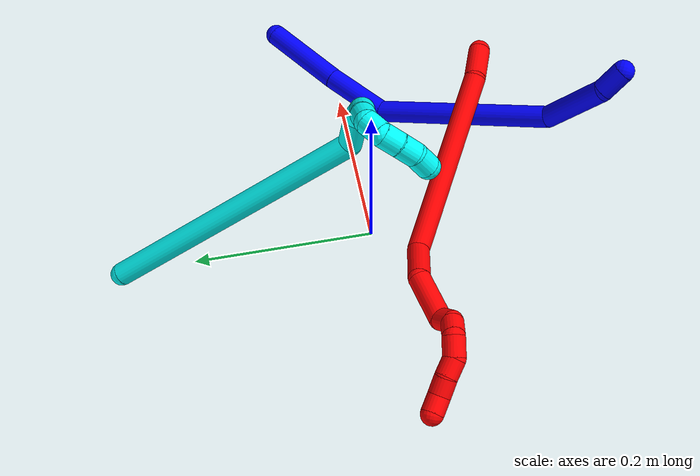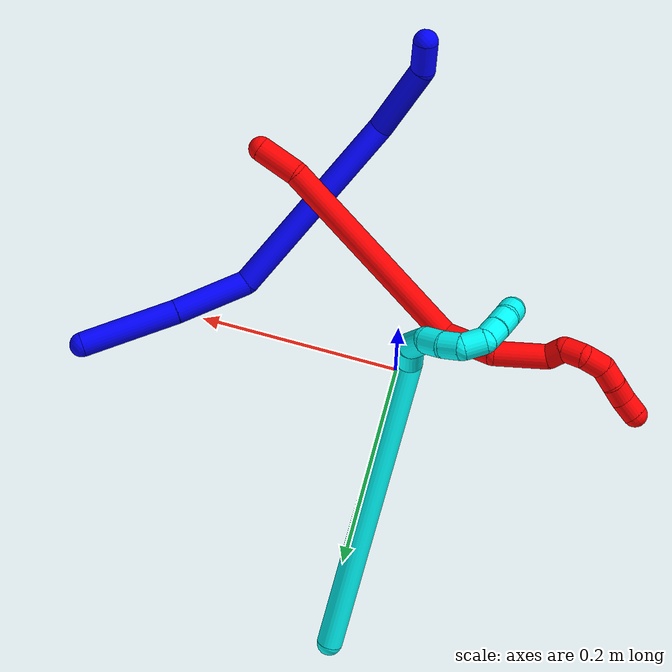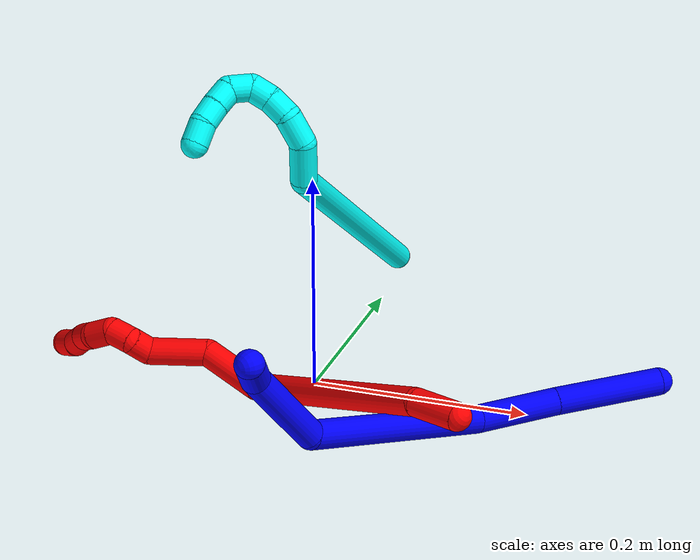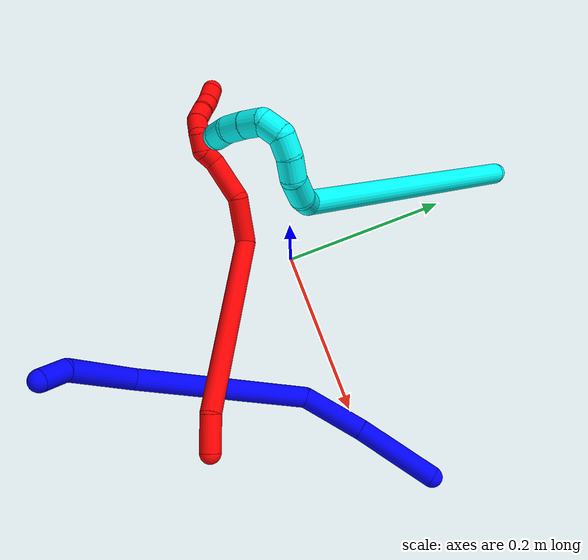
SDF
<sdf version="1.7">
 <world name="default">
  <plugin name="TubeGeneratorPlugin" filename="libtube_generator_plugin.so"/>
  <model name="photoneo_s_sensor">
   <static>1</static>
   <pose>0 0 2 1.57079 1.57079 3.14159</pose>
   <link name="link">
    <inertial><mass>0.1</mass></inertial>
    <sensor name="sensor" type="depth">
     <update_rate>30</update_rate>
     <camera>
      <horizontal_fov>1.22</horizontal_fov>
      <image><width>1920</width><height>1200</height><format>B8G8R8</format></image>
      <clip><near>0.1</near><far>4</far></clip>
      <depth_camera><output>points</output></depth_camera>
     </camera>
     <plugin name="camera_plugin" filename="libgazebo_ros_depth_camera.so">
      <baseline>0.2</baseline>
      <alwaysOn>1</alwaysOn>
      <updateRate>0.0</updateRate>
      <cameraName>camera_ir</cameraName>
      <imageTopicName>/camera/color/image_raw</imageTopicName>
      <cameraInfoTopicName>/camera/color/camera_info</cameraInfoTopicName>
      <depthImageTopicName>/camera/depth/image_raw</depthImageTopicName>
      <depthImageCameraInfoTopicName>/camera/depth/camera_info</depthImageCameraInfoTopicName>
      <pointCloudTopicName>/camera/depth/points</pointCloudTopicName>
      <frameName>fr_optical</frameName>
      <pointCloudCutoff>0.1</pointCloudCutoff>
      <pointCloudCutoffMax>2.0</pointCloudCutoffMax>
      <distortionK1>0</distortionK1>
      <distortionK2>0</distortionK2>
      <distortionK3>0</distortionK3>
      <distortionT1>0</distortionT1>
      <distortionT2>0</distortionT2>
      <CxPrime>0</CxPrime>
      <Cx>0</Cx>
      <Cy>0</Cy>
      <focalLength>0</focalLength>
      <hackBaseline>0</hackBaseline>
     </plugin>
    </sensor>
   </link>
  </model>
  <gravity>0 0 -9.8</gravity>
  <magnetic_field>6e-06 2.3e-05 -4.2e-05</magnetic_field>
  <atmosphere type="adiabatic"/>
  <physics name="default_physics" default="0" type="ode">
   <max_step_size>0.003</max_step_size>
   <real_time_factor>1</real_time_factor>
   <real_time_update_rate>1000</real_time_update_rate>
   <max_contacts>10000</max_contacts>
   <ode>
    <solver>
     <type>quick</type>
     <iters>100</iters>
     <sor>1.3</sor>
     <use_dynamic_moi_rescaling>0</use_dynamic_moi_rescaling>
    </solver>
    <constraints>
     <contact_max_correcting_vel>0</contact_max_correcting_vel>
     <contact_surface_layer>0.001</contact_surface_layer>
     <cfm>0</cfm>
     <erp>0.2</erp>
    </constraints>
   </ode>
  </physics>
  <scene><ambient>0.4 0.4 0.4 1</ambient><background>0.7 0.7 0.7 1</background><shadows>0</shadows></scene>
  <audio><device>default</device></audio>
  <spherical_coordinates>
   <surface_model>EARTH_WGS84</surface_model>
   <latitude_deg>0</latitude_deg>
   <longitude_deg>0</longitude_deg>
   <elevation>0</elevation>
   <heading_deg>0</heading_deg>
  </spherical_coordinates>
  <model name="bin">
   <static>1</static>
   <link name="bottom">
    <collision name="collision-bottom">
     <pose>0 0 -0.01 0 -0 0</pose>
     <geometry><box><size>0.8 0.6 0.02</size></box></geometry>
     <surface>
      <friction><ode><mu>100</mu><mu2>100</mu2></ode></friction>
      <contact><collide_bitmask>65535</collide_bitmask></contact>
     </surface>
    </collision>
   </link>
   <link name="west_wall">
    <collision name="collision-west_wall">
     <pose>-0.41 0 0.1 0 -0 0</pose>
     <geometry><box><size>0.02 0.6 0.2</size></box></geometry>
     <surface>
      <friction><ode><mu>100</mu><mu2>100</mu2></ode></friction>
      <contact><collide_bitmask>65535</collide_bitmask></contact>
     </surface>
    </collision>
   </link>
   <link name="east_wall">
    <collision name="collision-east_wall">
     <pose>0.41 0 0.1 0 -0 0</pose>
     <geometry><box><size>0.02 0.6 0.2</size></box></geometry>
     <surface>
      <friction><ode><mu>100</mu><mu2>100</mu2></ode></friction>
      <contact><collide_bitmask>65535</collide_bitmask></contact>
     </surface>
    </collision>
   </link>
   <link name="south_wall">
    <collision name="collision-south_wall">
     <pose>0 -0.31 0.1 0 -0 0</pose>
     <geometry><box><size>0.8 0.02 0.2</size></box></geometry>
     <surface>
      <friction><ode><mu>100</mu><mu2>100</mu2></ode></friction>
      <contact><collide_bitmask>65535</collide_bitmask></contact>
     </surface>
    </collision>
   </link>
   <link name="north_wall">
    <collision name="collision-north_wall">
     <pose>0 0.31 0.1 0 -0 0</pose>
     <geometry><box><size>0.8 0.02 0.2</size></box></geometry>
     <surface>
      <friction><ode><mu>100</mu><mu2>100</mu2></ode></friction>
      <contact><collide_bitmask>65535</collide_bitmask></contact>
     </surface>
    </collision>
   </link>
  </model>
  <model name="1">
   <static>0</static>
   <link name="1">
    <collision name="collision-cylinder-e_1_1_4">
     <pose>0.013025 -0.015727 0.045248 0.334516 0.26548 0.04508</pose>
     <geometry><cylinder><radius>0.0125</radius><length>0.099284</length></cylinder></geometry>
     <surface>
      <friction><ode><mu>1.16</mu><mu2>1.16</mu2><slip1>0</slip1><slip2>0</slip2></ode></friction>
      <contact><ode><kp>1e+06</kp><kd>1</kd><max_vel>0</max_vel><min_depth>0.001</min_depth></ode></contact>
     </surface>
    </collision>
    <visual name="visual-cylinder-e_1_1_4">
     <pose>0.013025 -0.015727 0.045248 0.334516 0.26548 0.04508</pose>
     <geometry><cylinder><radius>0.0125</radius><length>0.099284</length></cylinder></geometry>
     <material><ambient>0 0 1 1</ambient></material>
    </visual>
    <collision name="collision-cylinder-e_2_4_5">
     <pose>0.034844 -0.041815 0.126271 0.281904 0.231882 0.033048</pose>
     <geometry><cylinder><radius>0.0125</radius><length>0.07654</length></cylinder></geometry>
     <surface>
      <friction><ode><mu>1.16</mu><mu2>1.16</mu2><slip1>0</slip1><slip2>0</slip2></ode></friction>
      <contact><ode><kp>1e+06</kp><kd>1</kd><max_vel>0</max_vel><min_depth>0.001</min_depth></ode></contact>
     </surface>
    </collision>
    <visual name="visual-cylinder-e_2_4_5">
     <pose>0.034844 -0.041815 0.126271 0.281904 0.231882 0.033048</pose>
     <geometry><cylinder><radius>0.0125</radius><length>0.07654</length></cylinder></geometry>
     <material><ambient>0 0 1 1</ambient></material>
    </visual>
    <collision name="collision-cylinder-e_3_5_6">
     <pose>0.016828 -0.064896 0.260455 0.128539 -0.263893 -0.017083</pose>
     <geometry><cylinder><radius>0.0125</radius><length>0.205571</length></cylinder></geometry>
     <surface>
      <friction><ode><mu>1.16</mu><mu2>1.16</mu2><slip1>0</slip1><slip2>0</slip2></ode></friction>
      <contact><ode><kp>1e+06</kp><kd>1</kd><max_vel>0</max_vel><min_depth>0.001</min_depth></ode></contact>
     </surface>
    </collision>
    <visual name="visual-cylinder-e_3_5_6">
     <pose>0.016828 -0.064896 0.260455 0.128539 -0.263893 -0.017083</pose>
     <geometry><cylinder><radius>0.0125</radius><length>0.205571</length></cylinder></geometry>
     <material><ambient>0 0 1 1</ambient></material>
    </visual>
    <collision name="collision-cylinder-e_4_6_7">
     <pose>-0.037898 -0.097247 0.385901 0.628014 -0.696005 -0.234537</pose>
     <geometry><cylinder><radius>0.0125</radius><length>0.087079</length></cylinder></geometry>
     <surface>
      <friction><ode><mu>1.16</mu><mu2>1.16</mu2><slip1>0</slip1><slip2>0</slip2></ode></friction>
      <contact><ode><kp>1e+06</kp><kd>1</kd><max_vel>0</max_vel><min_depth>0.001</min_depth></ode></contact>
     </surface>
    </collision>
    <visual name="visual-cylinder-e_4_6_7">
     <pose>-0.037898 -0.097247 0.385901 0.628014 -0.696005 -0.234537</pose>
     <geometry><cylinder><radius>0.0125</radius><length>0.087079</length></cylinder></geometry>
     <material><ambient>0 0 1 1</ambient></material>
    </visual>
    <collision name="collision-cylinder-e_5_7_2">
     <pose>-0.079314 -0.117874 0.421014 0.122649 -1.0284 -0.069342</pose>
     <geometry><cylinder><radius>0.0125</radius><length>0.031525</length></cylinder></geometry>
     <surface>
      <friction><ode><mu>1.16</mu><mu2>1.16</mu2><slip1>0</slip1><slip2>0</slip2></ode></friction>
      <contact><ode><kp>1e+06</kp><kd>1</kd><max_vel>0</max_vel><min_depth>0.001</min_depth></ode></contact>
     </surface>
    </collision>
    <visual name="visual-cylinder-e_5_7_2">
     <pose>-0.079314 -0.117874 0.421014 0.122649 -1.0284 -0.069342</pose>
     <geometry><cylinder><radius>0.0125</radius><length>0.031525</length></cylinder></geometry>
     <material><ambient>0 0 1 1</ambient></material>
    </visual>
    <collision name="collision-sphere-2">
     <pose>-0.092815 -0.118869 0.42909 0 -0 0</pose>
     <geometry><sphere><radius>0.0125</radius></sphere></geometry>
     <surface>
      <friction><ode><mu>1.16</mu><mu2>1.16</mu2><slip1>0</slip1><slip2>0</slip2></ode></friction>
      <contact><ode><kp>1e+06</kp><kd>1</kd><max_vel>0</max_vel><min_depth>0.001</min_depth></ode></contact>
     </surface>
    </collision>
    <visual name="visual-sphere-2">
     <pose>-0.092815 -0.118869 0.42909 0 -0 0</pose>
     <geometry><sphere><radius>0.0125</radius></sphere></geometry>
     <material><ambient>0 0 1 1</ambient></material>
    </visual>
    <collision name="collision-sphere-7">
     <pose>-0.065814 -0.116878 0.412939 0 -0 0</pose>
     <geometry><sphere><radius>0.0125</radius></sphere></geometry>
     <surface>
      <friction><ode><mu>1.16</mu><mu2>1.16</mu2><slip1>0</slip1><slip2>0</slip2></ode></friction>
      <contact><ode><kp>1e+06</kp><kd>1</kd><max_vel>0</max_vel><min_depth>0.001</min_depth></ode></contact>
     </surface>
    </collision>
    <visual name="visual-sphere-7">
     <pose>-0.065814 -0.116878 0.412939 0 -0 0</pose>
     <geometry><sphere><radius>0.0125</radius></sphere></geometry>
     <material><ambient>0 0 1 1</ambient></material>
    </visual>
    <collision name="collision-sphere-6">
     <pose>-0.009982 -0.077616 0.358864 0 -0 0</pose>
     <geometry><sphere><radius>0.0125</radius></sphere></geometry>
     <surface>
      <friction><ode><mu>1.16</mu><mu2>1.16</mu2><slip1>0</slip1><slip2>0</slip2></ode></friction>
      <contact><ode><kp>1e+06</kp><kd>1</kd><max_vel>0</max_vel><min_depth>0.001</min_depth></ode></contact>
     </surface>
    </collision>
    <visual name="visual-sphere-6">
     <pose>-0.009982 -0.077616 0.358864 0 -0 0</pose>
     <geometry><sphere><radius>0.0125</radius></sphere></geometry>
     <material><ambient>0 0 1 1</ambient></material>
    </visual>
    <collision name="collision-sphere-5">
     <pose>0.043639 -0.052177 0.162046 0 -0 0</pose>
     <geometry><sphere><radius>0.0125</radius></sphere></geometry>
     <surface>
      <friction><ode><mu>1.16</mu><mu2>1.16</mu2><slip1>0</slip1><slip2>0</slip2></ode></friction>
      <contact><ode><kp>1e+06</kp><kd>1</kd><max_vel>0</max_vel><min_depth>0.001</min_depth></ode></contact>
     </surface>
    </collision>
    <visual name="visual-sphere-5">
     <pose>0.043639 -0.052177 0.162046 0 -0 0</pose>
     <geometry><sphere><radius>0.0125</radius></sphere></geometry>
     <material><ambient>0 0 1 1</ambient></material>
    </visual>
    <collision name="collision-sphere-1">
     <geometry><sphere><radius>0.0125</radius></sphere></geometry>
     <surface>
      <friction><ode><mu>1.16</mu><mu2>1.16</mu2><slip1>0</slip1><slip2>0</slip2></ode></friction>
      <contact><ode><kp>1e+06</kp><kd>1</kd><max_vel>0</max_vel><min_depth>0.001</min_depth></ode></contact>
     </surface>
    </collision>
    <visual name="visual-sphere-1">
     <geometry><sphere><radius>0.0125</radius></sphere></geometry>
     <material><ambient>0 0 1 1</ambient></material>
    </visual>
    <collision name="collision-sphere-4">
     <pose>0.026049 -0.031454 0.090495 0 -0 0</pose>
     <geometry><sphere><radius>0.0125</radius></sphere></geometry>
     <surface>
      <friction><ode><mu>1.16</mu><mu2>1.16</mu2><slip1>0</slip1><slip2>0</slip2></ode></friction>
      <contact><ode><kp>1e+06</kp><kd>1</kd><max_vel>0</max_vel><min_depth>0.001</min_depth></ode></contact>
     </surface>
    </collision>
    <visual name="visual-sphere-4">
     <pose>0.026049 -0.031454 0.090495 0 -0 0</pose>
     <geometry><sphere><radius>0.0125</radius></sphere></geometry>
     <material><ambient>0 0 1 1</ambient></material>
    </visual>
    <inertial>
     <pose>0.003238 -0.060574 0.229152 0 -0 0</pose>
     <mass>0.5</mass>
     <inertia>
      <ixx>0.000849</ixx>
      <ixy>0</ixy>
      <ixz>0</ixz>
      <iyy>0.000874</iyy>
      <iyz>0</iyz>
      <izz>0.000389</izz>
     </inertia>
    </inertial>
   </link>
   <pose>0.306769 0.061108 0.021242 -1.59406 0.981161 2.59655</pose>
  </model>
  <model name="2">
   <static>0</static>
   <link name="2">
    <collision name="collision-cylinder-e_1_1_4">
     <pose>-0.006023 0.011406 0.017256 -0.584073 -0.283349 0.085706</pose>
     <geometry><cylinder><radius>0.0125</radius><length>0.043088</length></cylinder></geometry>
     <surface>
      <friction><ode><mu>1.16</mu><mu2>1.16</mu2><slip1>0</slip1><slip2>0</slip2></ode></friction>
      <contact><ode><kp>1e+06</kp><kd>1</kd><max_vel>0</max_vel><min_depth>0.001</min_depth></ode></contact>
     </surface>
    </collision>
    <visual name="visual-cylinder-e_1_1_4">
     <pose>-0.006023 0.011406 0.017256 -0.584073 -0.283349 0.085706</pose>
     <geometry><cylinder><radius>0.0125</radius><length>0.043088</length></cylinder></geometry>
     <material><ambient>1 0 0 1</ambient></material>
    </visual>
    <collision name="collision-cylinder-e_2_4_5">
     <pose>-0.041404 0.047674 0.137272 -0.237371 -0.270857 0.032495</pose>
     <geometry><cylinder><radius>0.0125</radius><length>0.219451</length></cylinder></geometry>
     <surface>
      <friction><ode><mu>1.16</mu><mu2>1.16</mu2><slip1>0</slip1><slip2>0</slip2></ode></friction>
      <contact><ode><kp>1e+06</kp><kd>1</kd><max_vel>0</max_vel><min_depth>0.001</min_depth></ode></contact>
     </surface>
    </collision>
    <visual name="visual-cylinder-e_2_4_5">
     <pose>-0.041404 0.047674 0.137272 -0.237371 -0.270857 0.032495</pose>
     <geometry><cylinder><radius>0.0125</radius><length>0.219451</length></cylinder></geometry>
     <material><ambient>1 0 0 1</ambient></material>
    </visual>
    <collision name="collision-cylinder-e_3_5_6">
     <pose>-0.079527 0.095443 0.253827 -1.02882 -0.316728 0.180027</pose>
     <geometry><cylinder><radius>0.0125</radius><length>0.056282</length></cylinder></geometry>
     <surface>
      <friction><ode><mu>1.16</mu><mu2>1.16</mu2><slip1>0</slip1><slip2>0</slip2></ode></friction>
      <contact><ode><kp>1e+06</kp><kd>1</kd><max_vel>0</max_vel><min_depth>0.001</min_depth></ode></contact>
     </surface>
    </collision>
    <visual name="visual-cylinder-e_3_5_6">
     <pose>-0.079527 0.095443 0.253827 -1.02882 -0.316728 0.180027</pose>
     <geometry><cylinder><radius>0.0125</radius><length>0.056282</length></cylinder></geometry>
     <material><ambient>1 0 0 1</ambient></material>
    </visual>
    <collision name="collision-cylinder-e_4_6_7">
     <pose>-0.082089 0.138005 0.285787 -0.824689 0.227713 -0.099956</pose>
     <geometry><cylinder><radius>0.0125</radius><length>0.054945</length></cylinder></geometry>
     <surface>
      <friction><ode><mu>1.16</mu><mu2>1.16</mu2><slip1>0</slip1><slip2>0</slip2></ode></friction>
      <contact><ode><kp>1e+06</kp><kd>1</kd><max_vel>0</max_vel><min_depth>0.001</min_depth></ode></contact>
     </surface>
    </collision>
    <visual name="visual-cylinder-e_4_6_7">
     <pose>-0.082089 0.138005 0.285787 -0.824689 0.227713 -0.099956</pose>
     <geometry><cylinder><radius>0.0125</radius><length>0.054945</length></cylinder></geometry>
     <material><ambient>1 0 0 1</ambient></material>
    </visual>
    <collision name="collision-cylinder-e_5_7_8">
     <pose>-0.074498 0.167683 0.303545 -1.61157 0.137672 -0.143384</pose>
     <geometry><cylinder><radius>0.0125</radius><length>0.020258</length></cylinder></geometry>
     <surface>
      <friction><ode><mu>1.16</mu><mu2>1.16</mu2><slip1>0</slip1><slip2>0</slip2></ode></friction>
      <contact><ode><kp>1e+06</kp><kd>1</kd><max_vel>0</max_vel><min_depth>0.001</min_depth></ode></contact>
     </surface>
    </collision>
    <visual name="visual-cylinder-e_5_7_8">
     <pose>-0.074498 0.167683 0.303545 -1.61157 0.137672 -0.143384</pose>
     <geometry><cylinder><radius>0.0125</radius><length>0.020258</length></cylinder></geometry>
     <material><ambient>1 0 0 1</ambient></material>
    </visual>
    <collision name="collision-cylinder-e_6_8_9">
     <pose>-0.075499 0.18588 0.309312 -0.923599 -0.229354 0.114525</pose>
     <geometry><cylinder><radius>0.0125</radius><length>0.021036</length></cylinder></geometry>
     <surface>
      <friction><ode><mu>1.16</mu><mu2>1.16</mu2><slip1>0</slip1><slip2>0</slip2></ode></friction>
      <contact><ode><kp>1e+06</kp><kd>1</kd><max_vel>0</max_vel><min_depth>0.001</min_depth></ode></contact>
     </surface>
    </collision>
    <visual name="visual-cylinder-e_6_8_9">
     <pose>-0.075499 0.18588 0.309312 -0.923599 -0.229354 0.114525</pose>
     <geometry><cylinder><radius>0.0125</radius><length>0.021036</length></cylinder></geometry>
     <material><ambient>1 0 0 1</ambient></material>
    </visual>
    <collision name="collision-cylinder-e_7_9_10">
     <pose>-0.07703 0.197581 0.326728 -0.304267 0.072821 -0.01117</pose>
     <geometry><cylinder><radius>0.0125</radius><length>0.023626</length></cylinder></geometry>
     <surface>
      <friction><ode><mu>1.16</mu><mu2>1.16</mu2><slip1>0</slip1><slip2>0</slip2></ode></friction>
      <contact><ode><kp>1e+06</kp><kd>1</kd><max_vel>0</max_vel><min_depth>0.001</min_depth></ode></contact>
     </surface>
    </collision>
    <visual name="visual-cylinder-e_7_9_10">
     <pose>-0.07703 0.197581 0.326728 -0.304267 0.072821 -0.01117</pose>
     <geometry><cylinder><radius>0.0125</radius><length>0.023626</length></cylinder></geometry>
     <material><ambient>1 0 0 1</ambient></material>
    </visual>
    <collision name="collision-cylinder-e_8_10_11">
     <pose>-0.079157 0.201335 0.347901 -0.022646 -0.291952 0.00333</pose>
     <geometry><cylinder><radius>0.0125</radius><length>0.020747</length></cylinder></geometry>
     <surface>
      <friction><ode><mu>1.16</mu><mu2>1.16</mu2><slip1>0</slip1><slip2>0</slip2></ode></friction>
      <contact><ode><kp>1e+06</kp><kd>1</kd><max_vel>0</max_vel><min_depth>0.001</min_depth></ode></contact>
     </surface>
    </collision>
    <visual name="visual-cylinder-e_8_10_11">
     <pose>-0.079157 0.201335 0.347901 -0.022646 -0.291952 0.00333</pose>
     <geometry><cylinder><radius>0.0125</radius><length>0.020747</length></cylinder></geometry>
     <material><ambient>1 0 0 1</ambient></material>
    </visual>
    <collision name="collision-cylinder-e_9_11_12">
     <pose>-0.083449 0.200443 0.367924 0.11031 -0.127993 -0.007076</pose>
     <geometry><cylinder><radius>0.0125</radius><length>0.020473</length></cylinder></geometry>
     <surface>
      <friction><ode><mu>1.16</mu><mu2>1.16</mu2><slip1>0</slip1><slip2>0</slip2></ode></friction>
      <contact><ode><kp>1e+06</kp><kd>1</kd><max_vel>0</max_vel><min_depth>0.001</min_depth></ode></contact>
     </surface>
    </collision>
    <visual name="visual-cylinder-e_9_11_12">
     <pose>-0.083449 0.200443 0.367924 0.11031 -0.127993 -0.007076</pose>
     <geometry><cylinder><radius>0.0125</radius><length>0.020473</length></cylinder></geometry>
     <material><ambient>1 0 0 1</ambient></material>
    </visual>
    <collision name="collision-cylinder-e_10_12_2">
     <pose>-0.08774 0.200811 0.387493 -0.155553 -0.30153 0.023678</pose>
     <geometry><cylinder><radius>0.0125</radius><length>0.020094</length></cylinder></geometry>
     <surface>
      <friction><ode><mu>1.16</mu><mu2>1.16</mu2><slip1>0</slip1><slip2>0</slip2></ode></friction>
      <contact><ode><kp>1e+06</kp><kd>1</kd><max_vel>0</max_vel><min_depth>0.001</min_depth></ode></contact>
     </surface>
    </collision>
    <visual name="visual-cylinder-e_10_12_2">
     <pose>-0.08774 0.200811 0.387493 -0.155553 -0.30153 0.023678</pose>
     <geometry><cylinder><radius>0.0125</radius><length>0.020094</length></cylinder></geometry>
     <material><ambient>1 0 0 1</ambient></material>
    </visual>
    <collision name="collision-sphere-2">
     <pose>-0.090723 0.202298 0.396971 0 -0 0</pose>
     <geometry><sphere><radius>0.0125</radius></sphere></geometry>
     <surface>
      <friction><ode><mu>1.16</mu><mu2>1.16</mu2><slip1>0</slip1><slip2>0</slip2></ode></friction>
      <contact><ode><kp>1e+06</kp><kd>1</kd><max_vel>0</max_vel><min_depth>0.001</min_depth></ode></contact>
     </surface>
    </collision>
    <visual name="visual-sphere-2">
     <pose>-0.090723 0.202298 0.396971 0 -0 0</pose>
     <geometry><sphere><radius>0.0125</radius></sphere></geometry>
     <material><ambient>1 0 0 1</ambient></material>
    </visual>
    <collision name="collision-sphere-12">
     <pose>-0.084756 0.199325 0.378015 0 -0 0</pose>
     <geometry><sphere><radius>0.0125</radius></sphere></geometry>
     <surface>
      <friction><ode><mu>1.16</mu><mu2>1.16</mu2><slip1>0</slip1><slip2>0</slip2></ode></friction>
      <contact><ode><kp>1e+06</kp><kd>1</kd><max_vel>0</max_vel><min_depth>0.001</min_depth></ode></contact>
     </surface>
    </collision>
    <visual name="visual-sphere-12">
     <pose>-0.084756 0.199325 0.378015 0 -0 0</pose>
     <geometry><sphere><radius>0.0125</radius></sphere></geometry>
     <material><ambient>1 0 0 1</ambient></material>
    </visual>
    <collision name="collision-sphere-11">
     <pose>-0.082142 0.20156 0.357833 0 -0 0</pose>
     <geometry><sphere><radius>0.0125</radius></sphere></geometry>
     <surface>
      <friction><ode><mu>1.16</mu><mu2>1.16</mu2><slip1>0</slip1><slip2>0</slip2></ode></friction>
      <contact><ode><kp>1e+06</kp><kd>1</kd><max_vel>0</max_vel><min_depth>0.001</min_depth></ode></contact>
     </surface>
    </collision>
    <visual name="visual-sphere-11">
     <pose>-0.082142 0.20156 0.357833 0 -0 0</pose>
     <geometry><sphere><radius>0.0125</radius></sphere></geometry>
     <material><ambient>1 0 0 1</ambient></material>
    </visual>
    <collision name="collision-sphere-10">
     <pose>-0.076171 0.20111 0.337969 0 -0 0</pose>
     <geometry><sphere><radius>0.0125</radius></sphere></geometry>
     <surface>
      <friction><ode><mu>1.16</mu><mu2>1.16</mu2><slip1>0</slip1><slip2>0</slip2></ode></friction>
      <contact><ode><kp>1e+06</kp><kd>1</kd><max_vel>0</max_vel><min_depth>0.001</min_depth></ode></contact>
     </surface>
    </collision>
    <visual name="visual-sphere-10">
     <pose>-0.076171 0.20111 0.337969 0 -0 0</pose>
     <geometry><sphere><radius>0.0125</radius></sphere></geometry>
     <material><ambient>1 0 0 1</ambient></material>
    </visual>
    <collision name="collision-sphere-9">
     <pose>-0.07789 0.194051 0.315487 0 -0 0</pose>
     <geometry><sphere><radius>0.0125</radius></sphere></geometry>
     <surface>
      <friction><ode><mu>1.16</mu><mu2>1.16</mu2><slip1>0</slip1><slip2>0</slip2></ode></friction>
      <contact><ode><kp>1e+06</kp><kd>1</kd><max_vel>0</max_vel><min_depth>0.001</min_depth></ode></contact>
     </surface>
    </collision>
    <visual name="visual-sphere-9">
     <pose>-0.07789 0.194051 0.315487 0 -0 0</pose>
     <geometry><sphere><radius>0.0125</radius></sphere></geometry>
     <material><ambient>1 0 0 1</ambient></material>
    </visual>
    <collision name="collision-sphere-4">
     <pose>-0.012046 0.022812 0.034512 0 -0 0</pose>
     <geometry><sphere><radius>0.0125</radius></sphere></geometry>
     <surface>
      <friction><ode><mu>1.16</mu><mu2>1.16</mu2><slip1>0</slip1><slip2>0</slip2></ode></friction>
      <contact><ode><kp>1e+06</kp><kd>1</kd><max_vel>0</max_vel><min_depth>0.001</min_depth></ode></contact>
     </surface>
    </collision>
    <visual name="visual-sphere-4">
     <pose>-0.012046 0.022812 0.034512 0 -0 0</pose>
     <geometry><sphere><radius>0.0125</radius></sphere></geometry>
     <material><ambient>1 0 0 1</ambient></material>
    </visual>
    <collision name="collision-sphere-1">
     <geometry><sphere><radius>0.0125</radius></sphere></geometry>
     <surface>
      <friction><ode><mu>1.16</mu><mu2>1.16</mu2><slip1>0</slip1><slip2>0</slip2></ode></friction>
      <contact><ode><kp>1e+06</kp><kd>1</kd><max_vel>0</max_vel><min_depth>0.001</min_depth></ode></contact>
     </surface>
    </collision>
    <visual name="visual-sphere-1">
     <geometry><sphere><radius>0.0125</radius></sphere></geometry>
     <material><ambient>1 0 0 1</ambient></material>
    </visual>
    <collision name="collision-sphere-8">
     <pose>-0.073107 0.177708 0.303136 0 -0 0</pose>
     <geometry><sphere><radius>0.0125</radius></sphere></geometry>
     <surface>
      <friction><ode><mu>1.16</mu><mu2>1.16</mu2><slip1>0</slip1><slip2>0</slip2></ode></friction>
      <contact><ode><kp>1e+06</kp><kd>1</kd><max_vel>0</max_vel><min_depth>0.001</min_depth></ode></contact>
     </surface>
    </collision>
    <visual name="visual-sphere-8">
     <pose>-0.073107 0.177708 0.303136 0 -0 0</pose>
     <geometry><sphere><radius>0.0125</radius></sphere></geometry>
     <material><ambient>1 0 0 1</ambient></material>
    </visual>
    <collision name="collision-sphere-5">
     <pose>-0.070762 0.072535 0.240033 0 -0 0</pose>
     <geometry><sphere><radius>0.0125</radius></sphere></geometry>
     <surface>
      <friction><ode><mu>1.16</mu><mu2>1.16</mu2><slip1>0</slip1><slip2>0</slip2></ode></friction>
      <contact><ode><kp>1e+06</kp><kd>1</kd><max_vel>0</max_vel><min_depth>0.001</min_depth></ode></contact>
     </surface>
    </collision>
    <visual name="visual-sphere-5">
     <pose>-0.070762 0.072535 0.240033 0 -0 0</pose>
     <geometry><sphere><radius>0.0125</radius></sphere></geometry>
     <material><ambient>1 0 0 1</ambient></material>
    </visual>
    <collision name="collision-sphere-6">
     <pose>-0.088291 0.118352 0.267621 0 -0 0</pose>
     <geometry><sphere><radius>0.0125</radius></sphere></geometry>
     <surface>
      <friction><ode><mu>1.16</mu><mu2>1.16</mu2><slip1>0</slip1><slip2>0</slip2></ode></friction>
      <contact><ode><kp>1e+06</kp><kd>1</kd><max_vel>0</max_vel><min_depth>0.001</min_depth></ode></contact>
     </surface>
    </collision>
    <visual name="visual-sphere-6">
     <pose>-0.088291 0.118352 0.267621 0 -0 0</pose>
     <geometry><sphere><radius>0.0125</radius></sphere></geometry>
     <material><ambient>1 0 0 1</ambient></material>
    </visual>
    <collision name="collision-sphere-7">
     <pose>-0.075888 0.157659 0.303954 0 -0 0</pose>
     <geometry><sphere><radius>0.0125</radius></sphere></geometry>
     <surface>
      <friction><ode><mu>1.16</mu><mu2>1.16</mu2><slip1>0</slip1><slip2>0</slip2></ode></friction>
      <contact><ode><kp>1e+06</kp><kd>1</kd><max_vel>0</max_vel><min_depth>0.001</min_depth></ode></contact>
     </surface>
    </collision>
    <visual name="visual-sphere-7">
     <pose>-0.075888 0.157659 0.303954 0 -0 0</pose>
     <geometry><sphere><radius>0.0125</radius></sphere></geometry>
     <material><ambient>1 0 0 1</ambient></material>
    </visual>
    <inertial>
     <pose>-0.056726 0.096398 0.207537 0 -0 0</pose>
     <mass>0.5</mass>
     <inertia>
      <ixx>0.000928</ixx>
      <ixy>0</ixy>
      <ixz>0</ixz>
      <iyy>0.000946</iyy>
      <iyz>0</iyz>
      <izz>3.9e-05</izz>
     </inertia>
    </inertial>
   </link>
   <pose>0.183325 -0.165529 0.075837 2.30776 0.465942 -1.60705</pose>
  </model>
  <model name="3">
   <static>0</static>
   <link name="3">
    <collision name="collision-cylinder-e_1_1_4">
     <pose>0.042091 -0.021122 -0.147737 2.99958 0.274897 2.1917</pose>
     <geometry><cylinder><radius>0.0125</radius><length>0.310122</length></cylinder></geometry>
     <surface>
      <friction><ode><mu>1.16</mu><mu2>1.16</mu2><slip1>0</slip1><slip2>0</slip2></ode></friction>
      <contact><ode><kp>1e+06</kp><kd>1</kd><max_vel>0</max_vel><min_depth>0.001</min_depth></ode></contact>
     </surface>
    </collision>
    <visual name="visual-cylinder-e_1_1_4">
     <pose>0.042091 -0.021122 -0.147737 2.99958 0.274897 2.1917</pose>
     <geometry><cylinder><radius>0.0125</radius><length>0.310122</length></cylinder></geometry>
     <material><ambient>0.003922 1 0.996078 1</ambient></material>
    </visual>
    <collision name="collision-cylinder-e_2_4_5">
     <pose>0.093151 -0.05651 -0.30553 2.18488 0.474679 0.873002</pose>
     <geometry><cylinder><radius>0.0125</radius><length>0.039246</length></cylinder></geometry>
     <surface>
      <friction><ode><mu>1.16</mu><mu2>1.16</mu2><slip1>0</slip1><slip2>0</slip2></ode></friction>
      <contact><ode><kp>1e+06</kp><kd>1</kd><max_vel>0</max_vel><min_depth>0.001</min_depth></ode></contact>
     </surface>
    </collision>
    <visual name="visual-cylinder-e_2_4_5">
     <pose>0.093151 -0.05651 -0.30553 2.18488 0.474679 0.873002</pose>
     <geometry><cylinder><radius>0.0125</radius><length>0.039246</length></cylinder></geometry>
     <material><ambient>0.003922 1 0.996078 1</ambient></material>
    </visual>
    <collision name="collision-cylinder-e_3_5_6">
     <pose>0.101483 -0.082735 -0.32331 2.14415 -0.044658 -0.081963</pose>
     <geometry><cylinder><radius>0.0125</radius><length>0.028504</length></cylinder></geometry>
     <surface>
      <friction><ode><mu>1.16</mu><mu2>1.16</mu2><slip1>0</slip1><slip2>0</slip2></ode></friction>
      <contact><ode><kp>1e+06</kp><kd>1</kd><max_vel>0</max_vel><min_depth>0.001</min_depth></ode></contact>
     </surface>
    </collision>
    <visual name="visual-cylinder-e_3_5_6">
     <pose>0.101483 -0.082735 -0.32331 2.14415 -0.044658 -0.081963</pose>
     <geometry><cylinder><radius>0.0125</radius><length>0.028504</length></cylinder></geometry>
     <material><ambient>0.003922 1 0.996078 1</ambient></material>
    </visual>
    <collision name="collision-cylinder-e_4_6_7">
     <pose>0.09579 -0.103441 -0.334208 1.91902 -0.497894 -0.695957</pose>
     <geometry><cylinder><radius>0.0125</radius><length>0.021178</length></cylinder></geometry>
     <surface>
      <friction><ode><mu>1.16</mu><mu2>1.16</mu2><slip1>0</slip1><slip2>0</slip2></ode></friction>
      <contact><ode><kp>1e+06</kp><kd>1</kd><max_vel>0</max_vel><min_depth>0.001</min_depth></ode></contact>
     </surface>
    </collision>
    <visual name="visual-cylinder-e_4_6_7">
     <pose>0.09579 -0.103441 -0.334208 1.91902 -0.497894 -0.695957</pose>
     <geometry><cylinder><radius>0.0125</radius><length>0.021178</length></cylinder></geometry>
     <material><ambient>0.003922 1 0.996078 1</ambient></material>
    </visual>
    <collision name="collision-cylinder-e_5_7_8">
     <pose>0.084561 -0.11891 -0.341498 2.12006 -0.66418 -1.10337</pose>
     <geometry><cylinder><radius>0.0125</radius><length>0.020024</length></cylinder></geometry>
     <surface>
      <friction><ode><mu>1.16</mu><mu2>1.16</mu2><slip1>0</slip1><slip2>0</slip2></ode></friction>
      <contact><ode><kp>1e+06</kp><kd>1</kd><max_vel>0</max_vel><min_depth>0.001</min_depth></ode></contact>
     </surface>
    </collision>
    <visual name="visual-cylinder-e_5_7_8">
     <pose>0.084561 -0.11891 -0.341498 2.12006 -0.66418 -1.10337</pose>
     <geometry><cylinder><radius>0.0125</radius><length>0.020024</length></cylinder></geometry>
     <material><ambient>0.003922 1 0.996078 1</ambient></material>
    </visual>
    <collision name="collision-cylinder-e_6_8_9">
     <pose>0.07084 -0.126143 -0.352594 3.06872 -0.823265 -2.97498</pose>
     <geometry><cylinder><radius>0.0125</radius><length>0.02059</length></cylinder></geometry>
     <surface>
      <friction><ode><mu>1.16</mu><mu2>1.16</mu2><slip1>0</slip1><slip2>0</slip2></ode></friction>
      <contact><ode><kp>1e+06</kp><kd>1</kd><max_vel>0</max_vel><min_depth>0.001</min_depth></ode></contact>
     </surface>
    </collision>
    <visual name="visual-cylinder-e_6_8_9">
     <pose>0.07084 -0.126143 -0.352594 3.06872 -0.823265 -2.97498</pose>
     <geometry><cylinder><radius>0.0125</radius><length>0.02059</length></cylinder></geometry>
     <material><ambient>0.003922 1 0.996078 1</ambient></material>
    </visual>
    <collision name="collision-cylinder-e_7_9_10">
     <pose>0.058552 -0.120015 -0.365421 -2.29291 -0.491674 1.01392</pose>
     <geometry><cylinder><radius>0.0125</radius><length>0.020069</length></cylinder></geometry>
     <surface>
      <friction><ode><mu>1.16</mu><mu2>1.16</mu2><slip1>0</slip1><slip2>0</slip2></ode></friction>
      <contact><ode><kp>1e+06</kp><kd>1</kd><max_vel>0</max_vel><min_depth>0.001</min_depth></ode></contact>
     </surface>
    </collision>
    <visual name="visual-cylinder-e_7_9_10">
     <pose>0.058552 -0.120015 -0.365421 -2.29291 -0.491674 1.01392</pose>
     <geometry><cylinder><radius>0.0125</radius><length>0.020069</length></cylinder></geometry>
     <material><ambient>0.003922 1 0.996078 1</ambient></material>
    </visual>
    <collision name="collision-cylinder-e_8_10_11">
     <pose>0.049408 -0.106145 -0.376602 -2.20624 -0.455976 0.8613</pose>
     <geometry><cylinder><radius>0.0125</radius><length>0.020017</length></cylinder></geometry>
     <surface>
      <friction><ode><mu>1.16</mu><mu2>1.16</mu2><slip1>0</slip1><slip2>0</slip2></ode></friction>
      <contact><ode><kp>1e+06</kp><kd>1</kd><max_vel>0</max_vel><min_depth>0.001</min_depth></ode></contact>
     </surface>
    </collision>
    <visual name="visual-cylinder-e_8_10_11">
     <pose>0.049408 -0.106145 -0.376602 -2.20624 -0.455976 0.8613</pose>
     <geometry><cylinder><radius>0.0125</radius><length>0.020017</length></cylinder></geometry>
     <material><ambient>0.003922 1 0.996078 1</ambient></material>
    </visual>
    <collision name="collision-cylinder-e_9_11_2">
     <pose>0.040638 -0.090191 -0.384658 -1.87337 -0.445498 0.597548</pose>
     <geometry><cylinder><radius>0.0125</radius><length>0.02025</length></cylinder></geometry>
     <surface>
      <friction><ode><mu>1.16</mu><mu2>1.16</mu2><slip1>0</slip1><slip2>0</slip2></ode></friction>
      <contact><ode><kp>1e+06</kp><kd>1</kd><max_vel>0</max_vel><min_depth>0.001</min_depth></ode></contact>
     </surface>
    </collision>
    <visual name="visual-cylinder-e_9_11_2">
     <pose>0.040638 -0.090191 -0.384658 -1.87337 -0.445498 0.597548</pose>
     <geometry><cylinder><radius>0.0125</radius><length>0.02025</length></cylinder></geometry>
     <material><ambient>0.003922 1 0.996078 1</ambient></material>
    </visual>
    <collision name="collision-sphere-2">
     <pose>0.036275 -0.081469 -0.387381 0 -0 0</pose>
     <geometry><sphere><radius>0.0125</radius></sphere></geometry>
     <surface>
      <friction><ode><mu>1.16</mu><mu2>1.16</mu2><slip1>0</slip1><slip2>0</slip2></ode></friction>
      <contact><ode><kp>1e+06</kp><kd>1</kd><max_vel>0</max_vel><min_depth>0.001</min_depth></ode></contact>
     </surface>
    </collision>
    <visual name="visual-sphere-2">
     <pose>0.036275 -0.081469 -0.387381 0 -0 0</pose>
     <geometry><sphere><radius>0.0125</radius></sphere></geometry>
     <material><ambient>0.003922 1 0.996078 1</ambient></material>
    </visual>
    <collision name="collision-sphere-11">
     <pose>0.045 -0.098913 -0.381936 0 -0 0</pose>
     <geometry><sphere><radius>0.0125</radius></sphere></geometry>
     <surface>
      <friction><ode><mu>1.16</mu><mu2>1.16</mu2><slip1>0</slip1><slip2>0</slip2></ode></friction>
      <contact><ode><kp>1e+06</kp><kd>1</kd><max_vel>0</max_vel><min_depth>0.001</min_depth></ode></contact>
     </surface>
    </collision>
    <visual name="visual-sphere-11">
     <pose>0.045 -0.098913 -0.381936 0 -0 0</pose>
     <geometry><sphere><radius>0.0125</radius></sphere></geometry>
     <material><ambient>0.003922 1 0.996078 1</ambient></material>
    </visual>
    <collision name="collision-sphere-10">
     <pose>0.053815 -0.113377 -0.371268 0 -0 0</pose>
     <geometry><sphere><radius>0.0125</radius></sphere></geometry>
     <surface>
      <friction><ode><mu>1.16</mu><mu2>1.16</mu2><slip1>0</slip1><slip2>0</slip2></ode></friction>
      <contact><ode><kp>1e+06</kp><kd>1</kd><max_vel>0</max_vel><min_depth>0.001</min_depth></ode></contact>
     </surface>
    </collision>
    <visual name="visual-sphere-10">
     <pose>0.053815 -0.113377 -0.371268 0 -0 0</pose>
     <geometry><sphere><radius>0.0125</radius></sphere></geometry>
     <material><ambient>0.003922 1 0.996078 1</ambient></material>
    </visual>
    <collision name="collision-sphere-9">
     <pose>0.06329 -0.126653 -0.359575 0 -0 0</pose>
     <geometry><sphere><radius>0.0125</radius></sphere></geometry>
     <surface>
      <friction><ode><mu>1.16</mu><mu2>1.16</mu2><slip1>0</slip1><slip2>0</slip2></ode></friction>
      <contact><ode><kp>1e+06</kp><kd>1</kd><max_vel>0</max_vel><min_depth>0.001</min_depth></ode></contact>
     </surface>
    </collision>
    <visual name="visual-sphere-9">
     <pose>0.06329 -0.126653 -0.359575 0 -0 0</pose>
     <geometry><sphere><radius>0.0125</radius></sphere></geometry>
     <material><ambient>0.003922 1 0.996078 1</ambient></material>
    </visual>
    <collision name="collision-sphere-4">
     <pose>0.084182 -0.042245 -0.295473 0 -0 0</pose>
     <geometry><sphere><radius>0.0125</radius></sphere></geometry>
     <surface>
      <friction><ode><mu>1.16</mu><mu2>1.16</mu2><slip1>0</slip1><slip2>0</slip2></ode></friction>
      <contact><ode><kp>1e+06</kp><kd>1</kd><max_vel>0</max_vel><min_depth>0.001</min_depth></ode></contact>
     </surface>
    </collision>
    <visual name="visual-sphere-4">
     <pose>0.084182 -0.042245 -0.295473 0 -0 0</pose>
     <geometry><sphere><radius>0.0125</radius></sphere></geometry>
     <material><ambient>0.003922 1 0.996078 1</ambient></material>
    </visual>
    <collision name="collision-sphere-1">
     <geometry><sphere><radius>0.0125</radius></sphere></geometry>
     <surface>
      <friction><ode><mu>1.16</mu><mu2>1.16</mu2><slip1>0</slip1><slip2>0</slip2></ode></friction>
      <contact><ode><kp>1e+06</kp><kd>1</kd><max_vel>0</max_vel><min_depth>0.001</min_depth></ode></contact>
     </surface>
    </collision>
    <visual name="visual-sphere-1">
     <geometry><sphere><radius>0.0125</radius></sphere></geometry>
     <material><ambient>0.003922 1 0.996078 1</ambient></material>
    </visual>
    <collision name="collision-sphere-8">
     <pose>0.07839 -0.125634 -0.345614 0 -0 0</pose>
     <geometry><sphere><radius>0.0125</radius></sphere></geometry>
     <surface>
      <friction><ode><mu>1.16</mu><mu2>1.16</mu2><slip1>0</slip1><slip2>0</slip2></ode></friction>
      <contact><ode><kp>1e+06</kp><kd>1</kd><max_vel>0</max_vel><min_depth>0.001</min_depth></ode></contact>
     </surface>
    </collision>
    <visual name="visual-sphere-8">
     <pose>0.07839 -0.125634 -0.345614 0 -0 0</pose>
     <geometry><sphere><radius>0.0125</radius></sphere></geometry>
     <material><ambient>0.003922 1 0.996078 1</ambient></material>
    </visual>
    <collision name="collision-sphere-5">
     <pose>0.102119 -0.070774 -0.315587 0 -0 0</pose>
     <geometry><sphere><radius>0.0125</radius></sphere></geometry>
     <surface>
      <friction><ode><mu>1.16</mu><mu2>1.16</mu2><slip1>0</slip1><slip2>0</slip2></ode></friction>
      <contact><ode><kp>1e+06</kp><kd>1</kd><max_vel>0</max_vel><min_depth>0.001</min_depth></ode></contact>
     </surface>
    </collision>
    <visual name="visual-sphere-5">
     <pose>0.102119 -0.070774 -0.315587 0 -0 0</pose>
     <geometry><sphere><radius>0.0125</radius></sphere></geometry>
     <material><ambient>0.003922 1 0.996078 1</ambient></material>
    </visual>
    <collision name="collision-sphere-6">
     <pose>0.100847 -0.094696 -0.331033 0 -0 0</pose>
     <geometry><sphere><radius>0.0125</radius></sphere></geometry>
     <surface>
      <friction><ode><mu>1.16</mu><mu2>1.16</mu2><slip1>0</slip1><slip2>0</slip2></ode></friction>
      <contact><ode><kp>1e+06</kp><kd>1</kd><max_vel>0</max_vel><min_depth>0.001</min_depth></ode></contact>
     </surface>
    </collision>
    <visual name="visual-sphere-6">
     <pose>0.100847 -0.094696 -0.331033 0 -0 0</pose>
     <geometry><sphere><radius>0.0125</radius></sphere></geometry>
     <material><ambient>0.003922 1 0.996078 1</ambient></material>
    </visual>
    <collision name="collision-sphere-7">
     <pose>0.090733 -0.112186 -0.337382 0 -0 0</pose>
     <geometry><sphere><radius>0.0125</radius></sphere></geometry>
     <surface>
      <friction><ode><mu>1.16</mu><mu2>1.16</mu2><slip1>0</slip1><slip2>0</slip2></ode></friction>
      <contact><ode><kp>1e+06</kp><kd>1</kd><max_vel>0</max_vel><min_depth>0.001</min_depth></ode></contact>
     </surface>
    </collision>
    <visual name="visual-sphere-7">
     <pose>0.090733 -0.112186 -0.337382 0 -0 0</pose>
     <geometry><sphere><radius>0.0125</radius></sphere></geometry>
     <material><ambient>0.003922 1 0.996078 1</ambient></material>
    </visual>
    <inertial>
     <pose>0.055539 -0.04931 -0.22172 0 -0 0</pose>
     <mass>0.5</mass>
     <inertia>
      <ixx>0.000574</ixx>
      <ixy>0</ixy>
      <ixz>0</ixz>
      <iyy>0.00347</iyy>
      <iyz>0</iyz>
      <izz>-0.00036</izz>
     </inertia>
    </inertial>
   </link>
   <pose>-0.008688 0.28045 0.011495 -1.9777 -0.413438 -0.091766</pose>
  </model>
 </world>
</sdf>
